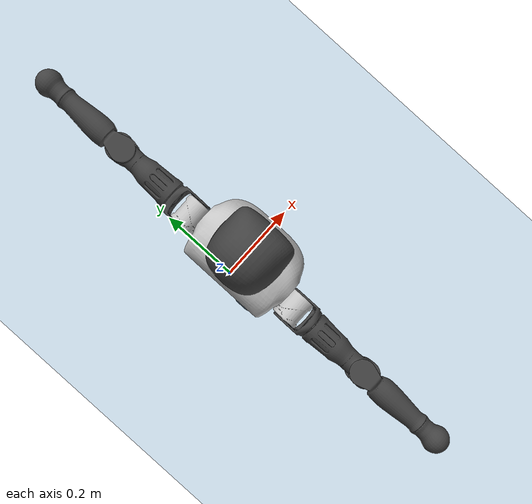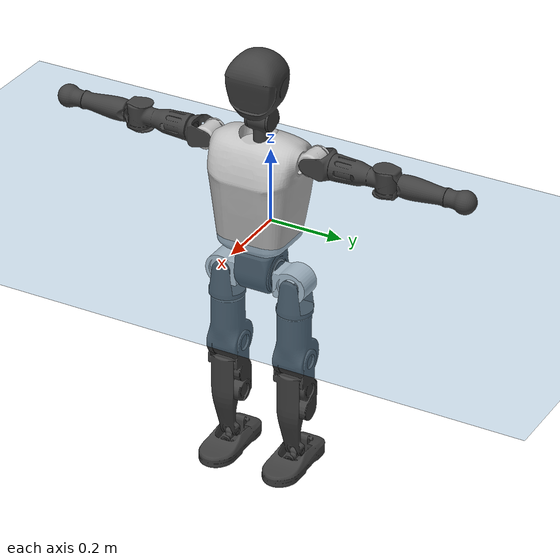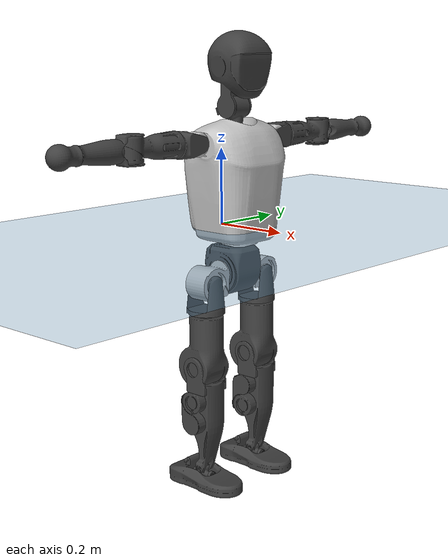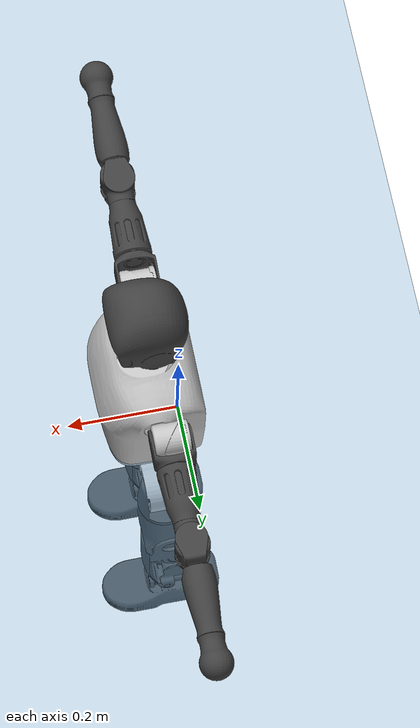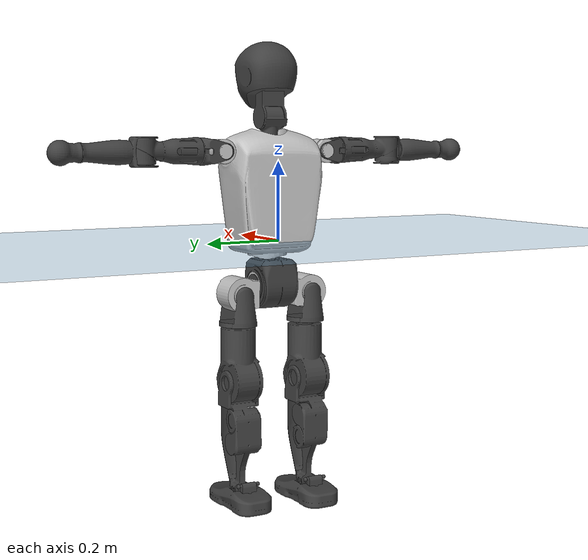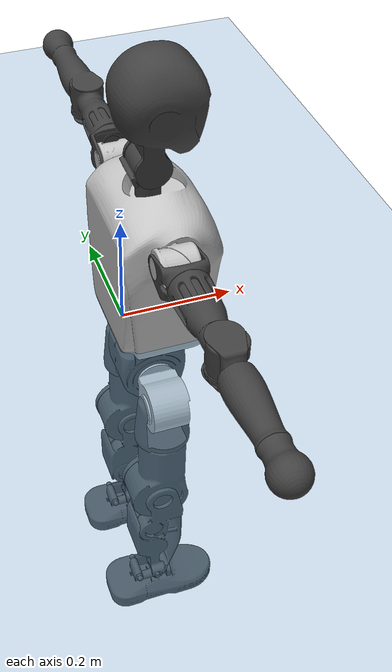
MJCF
<mujoco model="T1">
  <compiler angle="radian" assetdir="assets" balanceinertia="true" inertiafromgeom="false"/>

  <option timestep="0.005" density="1.2" viscosity="2e-05"/>

  <size nkey="1"/>

  <visual>
    <quality shadowsize="8192"/>
    <map shadowclip="0.5"/>
  </visual>

  <default>
    <default class="/">
      <joint armature="0.01" damping="0.01" frictionloss="0.1"/>
      <geom contype="0" conaffinity="0" group="1" solref="-1000 -80"/>
      <site size="0.01 0.005 0.005" group="5"/>
      <general forcelimited="true" biastype="affine" gainprm="25" biasprm="0 -25 -0.6"/>
      <default class="t1">
        <geom rgba="0.25 0.25 0.25 1"/>
        <default class="visual">
          <geom type="mesh" group="2"/>
        </default>
        <default class="collision">
          <geom group="3"/>
        </default>
        <default class="foot">
          <geom size="0.1115 0.05 0.015" type="box" condim="6" group="4" priority="1" solimp="0.015 1 0.015"/>
        </default>
        <default class="reward_collision_sphere">
          <geom group="5" rgba="1 0 0 1"/>
        </default>
      </default>
    </default>
  </default>

  <asset>
    <texture type="skybox" colorspace="auto" name="//unnamed_texture_0" builtin="gradient" rgb1="0.95 0.95 0.95" rgb2="0.95 0.95 0.95" width="100" height="600"/>
    <texture type="2d" colorspace="auto" name="texplane" builtin="checker" rgb1="0.345 0.575 0.748" rgb2="0.345 0.575 0.748" markrgb="1 1 1" width="512" height="512"/>
    <material name="MatPlane" class="/" texture="texplane" texuniform="true" texrepeat="2 2" specular="0.9"/>
    <mesh name="Trunk" class="/" file="Trunk.stl"/>
    <mesh name="H1" class="/" file="H1.stl"/>
    <mesh name="H2" class="/" file="H2.stl"/>
    <mesh name="AL1" class="/" file="AL1.stl"/>
    <mesh name="AL2" class="/" file="AL2.stl"/>
    <mesh name="AL3" class="/" file="AL3.stl"/>
    <mesh name="left_hand_link" class="/" file="left_hand_link.stl"/>
    <mesh name="AR1" class="/" file="AR1.stl"/>
    <mesh name="AR2" class="/" file="AR2.stl"/>
    <mesh name="AR3" class="/" file="AR3.stl"/>
    <mesh name="right_hand_link" class="/" file="right_hand_link.stl"/>
    <mesh name="Waist" class="/" file="Waist.stl"/>
    <mesh name="Hip_Pitch_Left" class="/" file="Hip_Pitch_Left.stl"/>
    <mesh name="Hip_Roll_Left" class="/" file="Hip_Roll_Left.stl"/>
    <mesh name="Hip_Yaw_Left" class="/" file="Hip_Yaw_Left.stl"/>
    <mesh name="Shank_Left" class="/" file="Shank_Left.stl"/>
    <mesh name="Ankle_Cross_Left" class="/" file="Ankle_Cross_Left.stl"/>
    <mesh name="left_foot_link" class="/" file="left_foot_link.stl"/>
    <mesh name="Hip_Pitch_Right" class="/" file="Hip_Pitch_Right.stl"/>
    <mesh name="Hip_Roll_Right" class="/" file="Hip_Roll_Right.stl"/>
    <mesh name="Hip_Yaw_Right" class="/" file="Hip_Yaw_Right.stl"/>
    <mesh name="Shank_Right" class="/" file="Shank_Right.stl"/>
    <mesh name="Ankle_Cross_Right" class="/" file="Ankle_Cross_Right.stl"/>
    <mesh name="right_foot_link" class="/" file="right_foot_link.stl"/>
  </asset>

  <worldbody>
    <geom name="floor" class="/" size="100 100 0.125" type="plane" group="0" material="MatPlane"/>
    <light name="toplight_shadow" class="/" pos="0 0 5" dir="0.0990148 0.0990148 -0.990148" type="directional" ambient="0.04 0.04 0.04" diffuse="0.55 0.55 0.55" specular="0.12 0.12 0.12"/>
    <light name="toplight_fill" class="/" pos="0 0 5" dir="0.0990148 0.0990148 -0.990148" type="directional" castshadow="false" ambient="0.04 0.04 0.04" diffuse="0.3 0.3 0.3" specular="0.08 0.08 0.08"/>
    <body name="trunk" childclass="t1" pos="0.000472612 -0.00235139 0.00177761" quat="0.999999 -1.16208e-05 -0.00015425 -0.00121498">
      <inertial pos="0.0384801 -0.00172639 0.106359" quat="0.999956 0.00162673 -0.00920493 0.000420074" mass="8.1875" diaginertia="0.0167478 0.0567153 0.0640753"/>
      <joint name="//unnamed_joint_0" type="free" armature="0" damping="0" frictionloss="0"/>
      <geom name="//unnamed_geom_1" class="visual" rgba="0.76 0.76 0.76 1" mesh="Trunk"/>
      <geom name="//unnamed_geom_2" class="collision" size="0.0665797 0.088773 0.133159" pos="0.0424975 0 0.121866" type="box"/>
      <geom name="//unnamed_geom_3" class="reward_collision_sphere" size="0.102089" pos="0.0424975 0 0.101555"/>
      <geom name="//unnamed_geom_4" class="reward_collision_sphere" size="0.0133159" pos="0.0424975 0.0798444 0"/>
      <geom name="//unnamed_geom_5" class="reward_collision_sphere" size="0.0133159" pos="0.0424975 -0.0798444 0"/>
      <geom name="//unnamed_geom_6" class="reward_collision_sphere" size="0.0133159" pos="0.0424975 0.10051 0.182799"/>
      <geom name="//unnamed_geom_7" class="reward_collision_sphere" size="0.0133159" pos="0.0424975 -0.10051 0.182799"/>
      <site name="imu" pos="0.00889348 0.00510562 -0.00524421" size="0.0088773"/>
      <camera name="track" pos="0 -1.87869 0" quat="0.707107 0.707107 0 0" mode="trackcom"/>
      <camera name="ego_camera" pos="0.0864115 0 0.426532" quat="-0.5 -0.5 0.5 0.5"/>
      <body name="H1" pos="0.0459027 0.00214068 0.244862" quat="1 -6.51717e-07 6.57001e-06 -0.000107198">
        <inertial pos="-0.00329144 -0.00191274 0.0601141" quat="0.75619 -0.00778468 0.00208186 0.654302" mass="0.311586" diaginertia="4.25476e-05 0.000165054 0.000161236"/>
        <joint name="AAHead_yaw" pos="0 0 0" axis="0.0018428 0.00430687 0.999989" range="-1.56623 1.53002" armature="0.00792608" damping="0.01697" frictionloss="0.100368"/>
        <geom name="//unnamed_geom_8" class="visual" mesh="H1"/>
        <body name="H2" pos="-0.000597101 -0.000176944 0.0638899" quat="1 5.57443e-05 6.86299e-05 0.000182166">
          <inertial pos="0.00419688 7.70285e-05 0.0999172" quat="0.988297 0.106005 -0.0752464 -0.0798097" mass="0.428776" diaginertia="0.000351524 0.00135983 0.00186643"/>
          <joint name="Head_pitch" pos="0 0 0" axis="9.96244e-05 -0.999997 0.00252509" range="-1.22828 0.352024" armature="0.00765871" damping="0.00434067" frictionloss="0.0934041"/>
          <geom name="//unnamed_geom_9" class="visual" mesh="H2"/>
          <geom name="//unnamed_geom_10" class="collision" size="0.0710184" pos="0.00708291 0 0.111711"/>
          <geom name="//unnamed_geom_11" class="reward_collision_sphere" size="0.0798957" pos="0.0141658 0 0.101555"/>
        </body>
      </body>
      <body name="AL1" pos="0.0410702 0.0994542 0.22332" quat="1 -3.59442e-05 0.00027375 -0.000216898">
        <inertial pos="-0.00131541 0.0421833 -0.000647373" quat="0.498154 0.505342 -0.498049 0.498417" mass="0.372647" diaginertia="0.000242896 0.000943723 0.000323295"/>
        <joint name="Left_Shoulder_Pitch" pos="0 0 0" axis="-0.00456661 0.999986 0.0027022" range="-3.31727 1.21456" armature="0.00863095" damping="0.00703865" frictionloss="0.0918361"/>
        <geom name="//unnamed_geom_12" class="visual" rgba="0.76 0.76 0.76 1" mesh="AL1"/>
        <body name="AL2" pos="0.000665344 0.0449163 -4.11037e-05" quat="1 -6.99234e-05 8.82869e-06 -1.71103e-05">
          <inertial pos="0.00334367 0.0346982 -0.000592932" quat="0.488085 0.511811 -0.487788 0.511747" mass="0.114084" diaginertia="7.25807e-05 0.000252483 0.000194563"/>
          <joint name="Left_Shoulder_Roll" pos="0 0 0" axis="-0.999998 -0.000128163 -0.0020798" stiffness="0.00223149" range="-1.56967 1.75888" armature="0.00898042" damping="0.0034913" frictionloss="0.0895585"/>
          <geom name="//unnamed_geom_13" class="visual" mesh="AL2"/>
          <body name="AL3" pos="0.00299571 0.0577653 0.00106985" quat="0.999999 0.00103477 5.43602e-05 0.000112132">
            <inertial pos="-0.00291819 0.0805983 -0.000169136" quat="0.706716 0.707488 0.00103333 0.00358158" mass="0.726575" diaginertia="0.0022967 0.00904002 0.000672169"/>
            <joint name="Left_Elbow_Pitch" pos="0 0 0" axis="0.000771093 -0.999999 0.00146487" stiffness="0.00385704" range="-2.27004 2.26782" armature="0.00844124" damping="0.00745935" frictionloss="0.0926304"/>
            <geom name="//unnamed_geom_14" class="visual" mesh="AL3"/>
            <geom name="//unnamed_geom_15" class="collision" size="0.0266319 0.0665797" pos="0 0.0469673 0" quat="0.707105 0.707108 0 0" type="cylinder"/>
            <geom name="//unnamed_geom_16" class="reward_collision_sphere" size="0.0319583"/>
            <body name="left_hand_link" pos="0.000144106 0.138349 -0.00171197" quat="0.999999 -0.00105261 -0.00061103 0.00014191">
              <inertial pos="-0.000492161 0.101758 0.00184816" quat="0.709557 0.704646 -0.000452547 -0.00150814" mass="0.22461" diaginertia="0.00144584 0.00572686 0.000217999"/>
              <joint name="Left_Elbow_Yaw" pos="0 0 0" axis="-0.000869595 -0.000716123 0.999999" stiffness="0.00710967" range="-2.43105 0.0128758" armature="0.00889342" damping="0.0119562" frictionloss="0.0890475"/>
              <geom name="//unnamed_geom_17" class="visual" mesh="left_hand_link"/>
              <geom name="//unnamed_geom_18" class="collision" size="0.0266319 0.0776764" pos="0 0.122115 0" quat="0.707105 0.707108 0 0" type="cylinder"/>
              <geom name="//unnamed_geom_19" class="reward_collision_sphere" size="0.0443865"/>
              <geom name="//unnamed_geom_20" class="reward_collision_sphere" size="0.0310705" pos="0 0.103328 0"/>
              <geom name="//unnamed_geom_21" class="reward_collision_sphere" size="0.0310705" pos="0 0.201959 0"/>
            </body>
          </body>
        </body>
      </body>
      <body name="AR1" pos="0.040811 -0.101428 0.222438" quat="1 -0.000460005 0.000435946 -0.000357851">
        <inertial pos="-0.000198687 -0.0447743 0.00251322" quat="0.50254 0.497405 -0.503017 0.497006" mass="0.367521" diaginertia="0.000241461 0.000907799 0.000313911"/>
        <joint name="Right_Shoulder_Pitch" pos="0 0 0" axis="0.0115188 -0.999934 0.000445468" stiffness="0.00402438" range="-1.18609 3.29945" armature="0.00854285" damping="0.0073739" frictionloss="0.0974949"/>
        <geom name="//unnamed_geom_22" class="visual" rgba="0.76 0.76 0.76 1" mesh="AR1"/>
        <body name="AR2" pos="-0.000758825 -0.0436798 0.000367844" quat="1 0.000171475 0.00011563 0.000116249">
          <inertial pos="0.00175479 -0.0354779 -0.000270655" quat="0.51145 0.48679 -0.513153 0.487985" mass="0.114277" diaginertia="7.35139e-05 0.000259037 0.000190569"/>
          <joint name="Right_Shoulder_Roll" pos="0 0 0" axis="-0.999941 -0.00396462 -0.0101296" range="-1.73837 1.56091" armature="0.00777964" damping="0.00792508" frictionloss="0.0910322"/>
          <geom name="//unnamed_geom_23" class="visual" mesh="AR2"/>
          <body name="AR3" pos="-0.000243525 -0.0592808 0.00205037" quat="0.999999 0.000816982 0.000617286 8.84598e-05">
            <inertial pos="0.00229427 -0.0798034 0.00247668" quat="0.707036 0.707177 0.000239075 -0.000877395" mass="0.700072" diaginertia="0.00217799 0.00919013 0.000663263"/>
            <joint name="Right_Elbow_Pitch" pos="0 0 0" axis="-0.000160771 1 -3.81919e-05" range="-2.25222 2.26684" armature="0.00883692" damping="0.0055403" frictionloss="0.100381"/>
            <geom name="//unnamed_geom_24" class="visual" mesh="AR3"/>
            <geom name="//unnamed_geom_25" class="collision" size="0.0266319 0.0665797" pos="0 -0.0469673 0" quat="0.707105 0.707108 0 0" type="cylinder"/>
            <geom name="//unnamed_geom_26" class="reward_collision_sphere" size="0.0319583"/>
            <body name="right_hand_link" pos="-0.00177634 -0.139015 -0.00193876" quat="1 8.5745e-05 -9.57399e-05 -5.898e-05">
              <inertial pos="-0.000495435 -0.103728 0.00158806" quat="0.706827 0.707384 -0.000532657 0.00179113" mass="0.230446" diaginertia="0.00150067 0.00615044 0.000240035"/>
              <joint name="Right_Elbow_Yaw" pos="0 0 0" axis="-0.00573071 0.00925481 0.999941" range="0.0189817 2.44143" armature="0.00893082" damping="0.00659662" frictionloss="0.0917141"/>
              <geom name="//unnamed_geom_27" class="visual" mesh="right_hand_link"/>
              <geom name="//unnamed_geom_28" class="collision" size="0.0266319 0.0776764" pos="0 -0.122115 0" quat="0.707105 0.707108 0 0" type="cylinder"/>
              <geom name="//unnamed_geom_29" class="reward_collision_sphere" size="0.0443865"/>
              <geom name="//unnamed_geom_30" class="reward_collision_sphere" size="0.0310705" pos="0 -0.103328 0"/>
              <geom name="//unnamed_geom_31" class="reward_collision_sphere" size="0.0310705" pos="0 -0.201959 0"/>
            </body>
          </body>
        </body>
      </body>
      <body name="Waist" pos="0.0425967 -0.000894429 -0.118066" quat="0.999999 0.000532818 -0.00124368 0.00100033">
        <inertial pos="-0.00127306 0.00110809 0.0061552" quat="0.982494 0.00919888 -0.185769 0.0105188" mass="1.77088" diaginertia="0.00096754 0.00397037 0.00525547"/>
        <joint name="Waist" pos="0 0 0" axis="-0.00179313 0.00497989 0.999986" range="-1.57239 1.54774" armature="0.0088222" damping="0.015293" frictionloss="0.0876475"/>
        <geom name="//unnamed_geom_32" class="visual" mesh="Waist"/>
        <body name="Hip_Pitch_Left" pos="0.00156967 0.0971785 0.00153779" quat="1 0.000123007 -0.000261938 -5.06383e-05">
          <inertial pos="0.00324131 -0.00660363 -0.0184765" quat="0.974219 0.225438 0.00458859 0.00739144" mass="0.723235" diaginertia="0.000315004 0.00110477 0.00138474"/>
          <joint name="Left_Hip_Pitch" pos="0 0 0" axis="0.00510651 0.999986 0.00139118" stiffness="0.0110481" range="-1.80653 1.59259" armature="0.0091648" damping="0.0120147" frictionloss="0.0912112"/>
          <geom name="//unnamed_geom_33" class="visual" rgba="0.76 0.76 0.76 1" mesh="Hip_Pitch_Left"/>
          <body name="Hip_Roll_Left" pos="-0.0016526 -0.000577836 -0.0234054" quat="1 -6.19934e-06 0.000114449 -7.18806e-05">
            <inertial pos="0.00111864 -0.0025958 -0.054612" quat="0.706995 -0.00586974 -0.00621473 0.707167" mass="0.265027" diaginertia="0.000295088 0.00105142 0.000562739"/>
            <joint name="Left_Hip_Roll" pos="0 0 0" axis="-1 0.000371786 0.000748653" stiffness="0.000239481" range="-1.5493 0.210785" armature="0.00840513" damping="1.76643e-05" frictionloss="0.0972688"/>
            <geom name="//unnamed_geom_34" class="visual" mesh="Hip_Roll_Left"/>
            <geom name="//unnamed_geom_35" class="reward_collision_sphere" size="0.0488251"/>
            <body name="Hip_Yaw_Left" pos="0.000440422 -0.0011896 -0.0825487" quat="1 0.000126476 0.000214778 -0.000414766">
              <inertial pos="-0.00542515 -0.00134246 -0.0924705" quat="0.696213 -0.0364298 -0.0283069 0.716351" mass="1.49991" diaginertia="0.00448805 0.0178691 0.00270468"/>
              <joint name="Left_Hip_Yaw" pos="0 0 0" axis="0.00185416 -0.000351647 -0.999998" range="-1.0573 1.01583" armature="0.00906944" damping="0.00558414" frictionloss="0.0872616"/>
              <geom name="//unnamed_geom_36" class="visual" mesh="Hip_Yaw_Left"/>
              <geom name="//unnamed_geom_37" class="collision" size="0.0443865 0.0710184" type="cylinder"/>
              <body name="Shank_Left" pos="-0.0102051 0.00017888 -0.138286" quat="1 -0.000233303 -7.52065e-05 7.23461e-05">
                <inertial pos="-0.00611728 0.000520801 -0.126124" quat="0.997458 0.000311156 -0.0212856 0.0680003" mass="1.19213" diaginertia="0.00621253 0.024115 0.0019314"/>
                <joint name="Left_Knee_Pitch" pos="0 0 0" axis="0.00159531 0.999993 -0.00340484" range="0.00175053 2.31687" armature="0.00962587" damping="0" frictionloss="0.0865159"/>
                <geom name="//unnamed_geom_38" class="visual" mesh="Shank_Left"/>
                <geom name="//unnamed_geom_39" class="collision" size="0.0443865 0.0665797" pos="0 0 -0.121866" type="cylinder"/>
                <geom name="//unnamed_geom_40" class="reward_collision_sphere" size="0.0577024"/>
                <body name="Ankle_Cross_Left" pos="0.00237426 -0.000193956 -0.283527" quat="1 -0.00012578 -0.000128617 -0.000103795">
                  <inertial pos="-0.00518362 -0.00110176 -0.00760982" quat="0.444218 0.552203 0.548863 0.443274" mass="0.05067" diaginertia="5.10104e-06 1.87058e-05 1.21396e-05"/>
                  <joint name="Left_Ankle_Pitch" pos="0 0 0" axis="0.000146811 1 0.00014634" range="-0.868387 0.345061" armature="0.00999728" damping="0.0211079" frictionloss="0.0911433"/>
                  <geom name="//unnamed_geom_41" class="visual" mesh="Ankle_Cross_Left"/>
                  <body name="left_foot_link" pos="-0.000224149 -0.00208019 -0.0106887" quat="0.999999 -0.000434744 0.000441646 -0.00112898">
                    <inertial pos="-0.00204528 -0.000447498 -0.00858558" quat="0.00753423 0.622363 0.00991957 0.78263" mass="0.498173" diaginertia="0.000494908 0.00174726 0.00241145"/>
                    <joint name="Left_Ankle_Roll" pos="0 0 0" axis="-0.999899 -0.00230701 -0.0140525" range="-0.457546 0.465815" armature="0.00879266" damping="0" frictionloss="0.0934739"/>
                    <geom name="//unnamed_geom_42" class="visual" mesh="left_foot_link"/>
                    <geom name="left_foot" class="foot" size="0.109202 0.0402641 0.0141745" pos="0.00708291 0 -0.0152333"/>
                    <geom name="//unnamed_geom_44" class="reward_collision_sphere" size="0.0461619" pos="0.00708291 0 -0.0152333"/>
                    <geom name="//unnamed_geom_45" class="reward_collision_sphere" size="0.0266319" pos="0.0672877 -0.021605 -0.0152333"/>
                    <geom name="//unnamed_geom_46" class="reward_collision_sphere" size="0.0266319" pos="-0.0495804 -0.021605 -0.0152333"/>
                    <site name="left_foot" class="foot" pos="0.00708291 0 -0.0152333" size="0.0088773"/>
                  </body>
                </body>
              </body>
            </body>
          </body>
        </body>
        <body name="Hip_Pitch_Right" pos="0.000767425 -0.100107 -0.000709056" quat="1 0.000226677 4.24153e-05 0.000102083">
          <inertial pos="-0.00234706 0.004646 -0.0174655" quat="0.973853 -0.226664 0.015273 0.000559668" mass="0.711873" diaginertia="0.000329152 0.00109437 0.00133745"/>
          <joint name="Right_Hip_Pitch" pos="0 0 0" axis="-0.00146802 -0.99999 -0.0042129" range="-1.54992 1.77345" armature="0.00913713" damping="0" frictionloss="0.0869712"/>
          <geom name="//unnamed_geom_47" class="visual" rgba="0.76 0.76 0.76 1" mesh="Hip_Pitch_Right"/>
          <body name="Hip_Roll_Right" pos="-0.00228489 0.000259861 -0.0212356" quat="1 -0.000139061 0.00061729 -0.00011255">
            <inertial pos="-0.00035645 -0.0010803 -0.0528315" quat="0.698891 -0.00475547 -0.00556409 0.71519" mass="0.270054" diaginertia="0.000323104 0.0011309 0.000555949"/>
            <joint name="Right_Hip_Roll" pos="0 0 0" axis="-0.999985 -0.000897991 -0.00533902" range="-0.186583 1.57937" armature="0.00850914" damping="0.00376883" frictionloss="0.0953195"/>
            <geom name="//unnamed_geom_48" class="visual" mesh="Hip_Roll_Right"/>
            <geom name="//unnamed_geom_49" class="reward_collision_sphere" size="0.0488251"/>
            <body name="Hip_Yaw_Right" pos="-0.00163719 0.000811224 -0.0857392" quat="1 -0.000258493 9.01769e-05 0.000525705">
              <inertial pos="-0.00461048 0.000259496 -0.0897552" quat="0.715851 -0.0304047 -0.0333213 0.696795" mass="1.50721" diaginertia="0.00474119 0.0187568 0.00289253"/>
              <joint name="Right_Hip_Yaw" pos="0 0 0" axis="0.000282313 -0.00129339 -0.999999" range="-1.00548 1.00707" armature="0.00859144" damping="0.0221013" frictionloss="0.092174"/>
              <geom name="//unnamed_geom_50" class="visual" mesh="Hip_Yaw_Right"/>
              <geom name="//unnamed_geom_51" class="collision" size="0.0443865 0.0710184" type="cylinder"/>
              <body name="Shank_Right" pos="-0.0116396 0.000257119 -0.138386" quat="1 2.14744e-05 1.60047e-05 -0.000279938">
                <inertial pos="-0.00397964 -0.00244011 -0.124159" quat="0.999358 0.00545286 -0.0257836 -0.0242681" mass="1.28015" diaginertia="0.00627443 0.025372 0.00204361"/>
                <joint name="Right_Knee_Pitch" pos="0 0 0" axis="0.00479853 -0.999955 -0.00816028" stiffness="0.00037419" range="-2.39102 0.00448281" armature="0.00935206" damping="0.0101168" frictionloss="0.0910511"/>
                <geom name="//unnamed_geom_52" class="visual" mesh="Shank_Right"/>
                <geom name="//unnamed_geom_53" class="collision" size="0.0443865 0.0665797" pos="0 0 -0.121866" type="cylinder"/>
                <geom name="//unnamed_geom_54" class="reward_collision_sphere" size="0.0577024"/>
                <body name="Ankle_Cross_Right" pos="-0.000432683 -0.00165162 -0.286354" quat="1 -6.97176e-05 2.83462e-05 -2.04422e-05">
                  <inertial pos="-0.00343353 0.000868979 -0.00804698" quat="0.443088 0.551104 0.550927 0.443212" mass="0.0507818" diaginertia="5.36865e-06 1.86163e-05 1.27219e-05"/>
                  <joint name="Right_Ankle_Pitch" pos="0 0 0" axis="0.0107242 -0.999938 -0.00283932" range="-0.328575 0.832061" armature="0.00879961" damping="0.0105947" frictionloss="0.0872872"/>
                  <geom name="//unnamed_geom_55" class="visual" mesh="Ankle_Cross_Right"/>
                  <body name="right_foot_link" pos="0.000573865 0.00117319 -0.0114219" quat="1 3.5822e-05 4.88806e-05 -5.46533e-05">
                    <inertial pos="-8.1745e-05 0.00214984 -0.0118973" quat="-0.00330173 0.618797 -0.0108697 0.785469" mass="0.46377" diaginertia="0.000464274 0.00168047 0.00221029"/>
                    <joint name="Right_Ankle_Roll" pos="0 0 0" axis="-0.99999 -0.00130768 0.00423941" range="-0.480878 0.491568" armature="0.00770483" damping="0" frictionloss="0.0959126"/>
                    <geom name="//unnamed_geom_56" class="visual" mesh="right_foot_link"/>
                    <geom name="right_foot" class="foot" size="0.0972912 0.0408008 0.014336" pos="0.00708291 0 -0.0152333"/>
                    <geom name="//unnamed_geom_58" class="reward_collision_sphere" size="0.0355092"/>
                    <geom name="//unnamed_geom_59" class="reward_collision_sphere" size="0.0266319" pos="0.00708291 0 -0.0152333"/>
                    <geom name="//unnamed_geom_60" class="reward_collision_sphere" size="0.0266319" pos="0.0672877 0.021605 -0.0152333"/>
                    <geom name="//unnamed_geom_61" class="reward_collision_sphere" size="0.0266319" pos="-0.0495804 0.021605 -0.0152333"/>
                    <site name="right_foot" class="foot" pos="0.00708291 0 -0.0152333" size="0.0088773"/>
                  </body>
                </body>
              </body>
            </body>
          </body>
        </body>
      </body>
    </body>
  </worldbody>

  <contact>
    <pair class="/" geom1="floor" geom2="left_foot" name="//unnamed_contact_0"/>
    <pair class="/" geom1="floor" geom2="right_foot" name="//unnamed_contact_1"/>
  </contact>

  <actuator>
    <general name="AAHead_yaw" class="/" joint="AAHead_yaw" forcerange="-6.29389 6.29389" gainprm="22.2234" biasprm="0 -22.2234 -0.528991"/>
    <general name="Head_pitch" class="/" joint="Head_pitch" forcerange="-6.31784 6.31784" gainprm="22.2234" biasprm="0 -22.2234 -0.528991"/>
    <general name="Left_Shoulder_Pitch" class="/" joint="Left_Shoulder_Pitch" forcerange="-14.3481 14.3481" gainprm="22.2234" biasprm="0 -22.2234 -0.528991"/>
    <general name="Left_Shoulder_Roll" class="/" joint="Left_Shoulder_Roll" forcerange="-14.4436 14.4436" gainprm="22.2234" biasprm="0 -22.2234 -0.528991"/>
    <general name="Left_Elbow_Pitch" class="/" joint="Left_Elbow_Pitch" forcerange="-16.8453 16.8453" gainprm="22.2234" biasprm="0 -22.2234 -0.528991"/>
    <general name="Left_Elbow_Yaw" class="/" joint="Left_Elbow_Yaw" forcerange="-16.139 16.139" gainprm="22.2234" biasprm="0 -22.2234 -0.528991"/>
    <general name="Right_Shoulder_Pitch" class="/" joint="Right_Shoulder_Pitch" forcerange="-16.5537 16.5537" gainprm="22.2234" biasprm="0 -22.2234 -0.528991"/>
    <general name="Right_Shoulder_Roll" class="/" joint="Right_Shoulder_Roll" forcerange="-16.9652 16.9652" gainprm="22.2234" biasprm="0 -22.2234 -0.528991"/>
    <general name="Right_Elbow_Pitch" class="/" joint="Right_Elbow_Pitch" forcerange="-15.456 15.456" gainprm="22.2234" biasprm="0 -22.2234 -0.528991"/>
    <general name="Right_Elbow_Yaw" class="/" joint="Right_Elbow_Yaw" forcerange="-16.54 16.54" gainprm="22.2234" biasprm="0 -22.2234 -0.528991"/>
    <general name="Waist" class="/" joint="Waist" forcerange="-24.6145 24.6145" gainprm="22.2234" biasprm="0 -22.2234 -0.528991"/>
    <general name="Left_Hip_Pitch" class="/" joint="Left_Hip_Pitch" forcerange="-39.4126 39.4126" gainprm="22.2234" biasprm="0 -22.2234 -0.528991"/>
    <general name="Left_Hip_Roll" class="/" joint="Left_Hip_Roll" forcerange="-26.0639 26.0639" gainprm="22.2234" biasprm="0 -22.2234 -0.528991"/>
    <general name="Left_Hip_Yaw" class="/" joint="Left_Hip_Yaw" forcerange="-25.9214 25.9214" gainprm="22.2234" biasprm="0 -22.2234 -0.528991"/>
    <general name="Left_Knee_Pitch" class="/" joint="Left_Knee_Pitch" forcerange="-52.6913 52.6913" gainprm="22.2234" biasprm="0 -22.2234 -0.528991"/>
    <general name="Left_Ankle_Pitch" class="/" joint="Left_Ankle_Pitch" forcerange="-17.8463 17.8463" gainprm="22.2234" biasprm="0 -22.2234 -0.528991"/>
    <general name="Left_Ankle_Roll" class="/" joint="Left_Ankle_Roll" forcerange="-12.8989 12.8989" gainprm="22.2234" biasprm="0 -22.2234 -0.528991"/>
    <general name="Right_Hip_Pitch" class="/" joint="Right_Hip_Pitch" forcerange="-43.6529 43.6529" gainprm="22.2234" biasprm="0 -22.2234 -0.528991"/>
    <general name="Right_Hip_Roll" class="/" joint="Right_Hip_Roll" forcerange="-29.2213 29.2213" gainprm="22.2234" biasprm="0 -22.2234 -0.528991"/>
    <general name="Right_Hip_Yaw" class="/" joint="Right_Hip_Yaw" forcerange="-26.9358 26.9358" gainprm="22.2234" biasprm="0 -22.2234 -0.528991"/>
    <general name="Right_Knee_Pitch" class="/" joint="Right_Knee_Pitch" forcerange="-54.005 54.005" gainprm="22.2234" biasprm="0 -22.2234 -0.528991"/>
    <general name="Right_Ankle_Pitch" class="/" joint="Right_Ankle_Pitch" forcerange="-16.0121 16.0121" gainprm="22.2234" biasprm="0 -22.2234 -0.528991"/>
    <general name="Right_Ankle_Roll" class="/" joint="Right_Ankle_Roll" forcerange="-14.3598 14.3598" gainprm="22.2234" biasprm="0 -22.2234 -0.528991"/>
  </actuator>

  <sensor>
    <gyro site="imu" name="imu_angular_velocity"/>
    <velocimeter site="imu" name="imu_linear_velocity"/>
    <framelinvel objtype="site" objname="left_foot" name="left_foot_global_linear_velocity"/>
    <framelinvel objtype="site" objname="right_foot" name="right_foot_global_linear_velocity"/>
  </sensor>

  <keyframe>
    <key name="home" qpos="0 0 0.6385 1 0 0 0 0 0 0 1.4 0 -0.4 0 -1.4 0 0.4 0 -0.4 0 0 0.8 -0.4 0 0.4 0 0 -0.8 0.4 0"/>
  </keyframe>
</mujoco>
